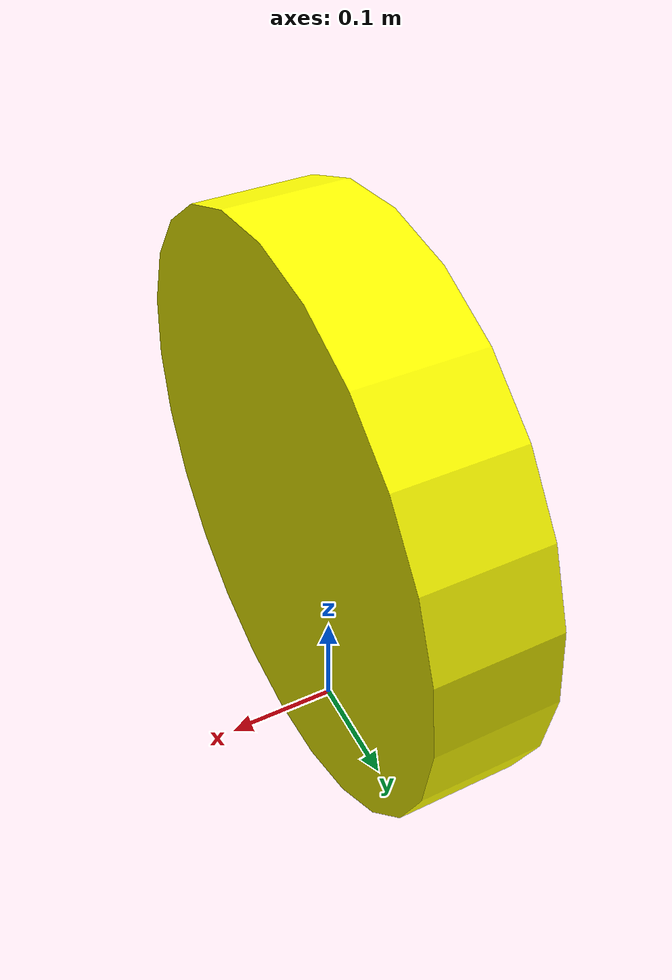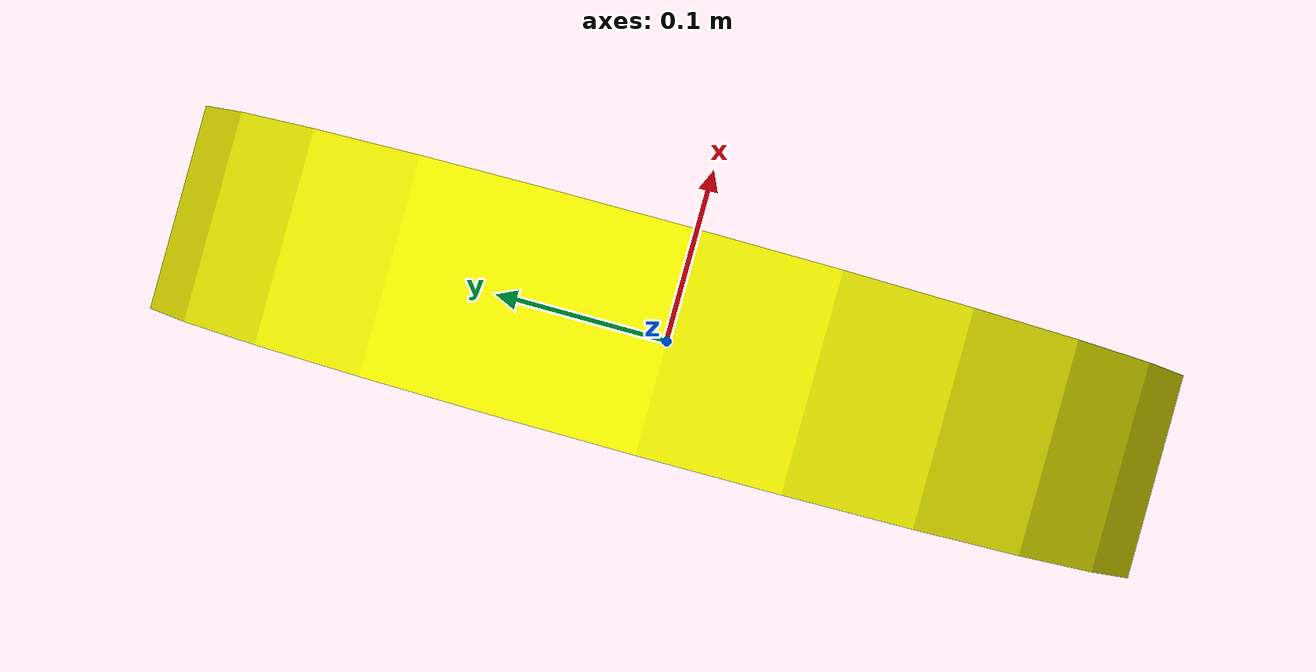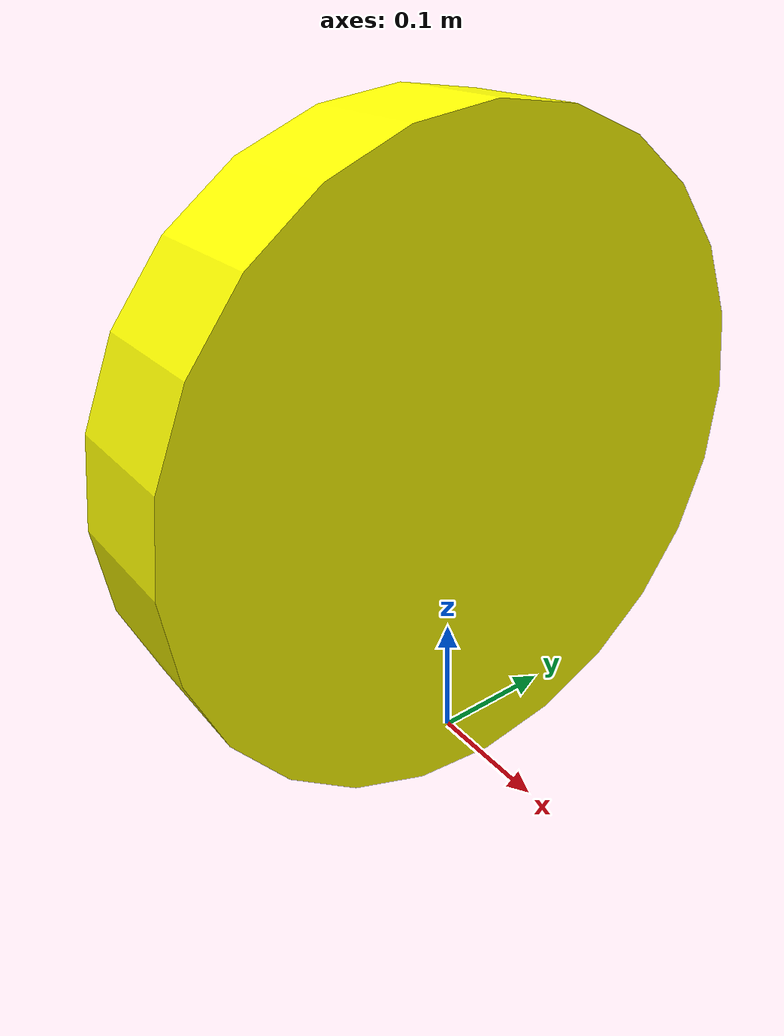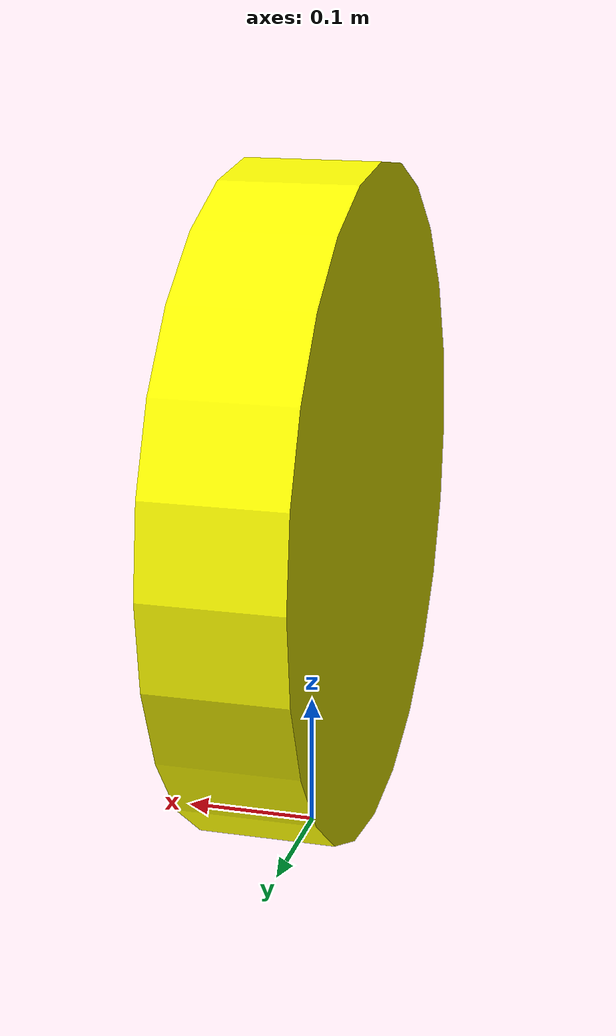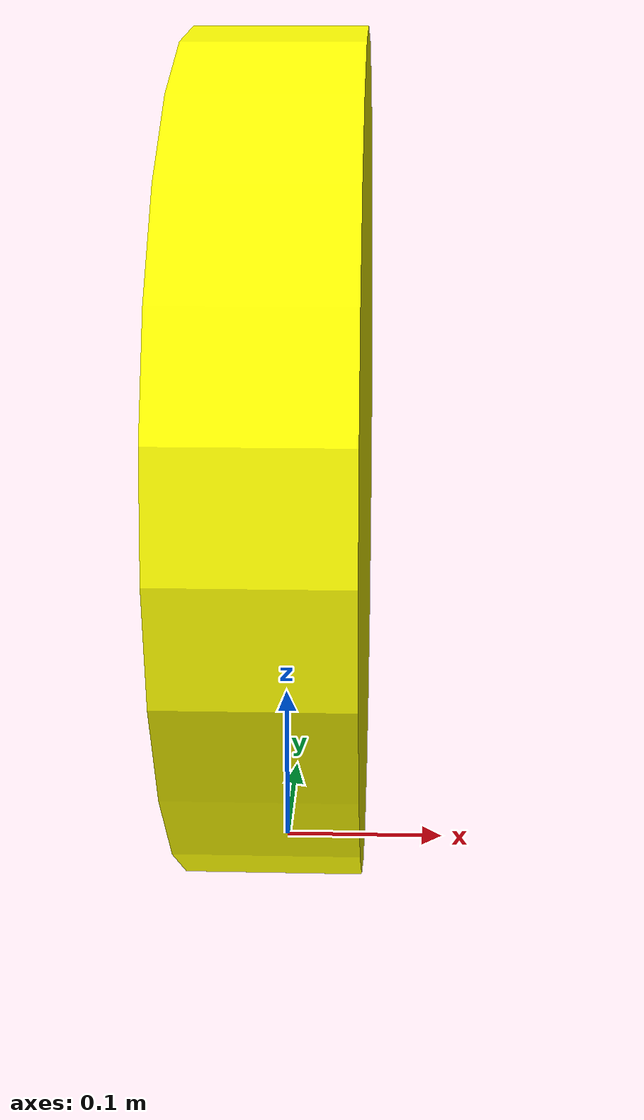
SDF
<?xml version="1.0"?>
<sdf version='1.4'>
  <model name="coin">
    <link name='chassis'>
    <pose>0 0 .26 0 0 0</pose>
	<collision name="box_collision">
          <geometry>
	    <sphere>
	      <radius>.25</radius>
	    </sphere>
	  </geometry>
	<surface>
       	 <contact>
	  <collide_bitmask>0x01</collide_bitmask>
            <ode>
              <min_depth>10</min_depth>
              <kp>1e0</kp>
            </ode>
      	 </contact>
        </surface>

        </collision>

      <visual name='visual'>
       <pose>0 0 0 0 1.57 0</pose>
	 <geometry>
	   <cylinder>
       	     <radius>.25</radius>
	     <length>.1</length>
           </cylinder>
	 </geometry>
         <material>
          <ambient>1 1 0 1</ambient>
          <diffuse>1 1 0 1</diffuse>
          <specular>0.1 0.1 0.1 1</specular>
          <emissive>0 0 0 0</emissive>
         </material>
      </visual>

      <sensor name="contact_sensor_1" type="contact">

	<plugin name="my_contact_plugin" filename="libgazebo_ros_bumper.so">
		<bumperTopicName>coin_bumper</bumperTopicName>
    		<frameName>world</frameName>
	</plugin>
        <contact>
          <collision>box_collision</collision>
        </contact>
      </sensor>

   </link>
   <joint type="revolute" name="coin_hinge">
     <pose>0 0 0.26 0 0 0</pose>
       <child>chassis</child>
       <parent>world</parent>
       <axis>
         <xyz>0 0 1</xyz>
       </axis>
    </joint>
  </model>
</sdf>
